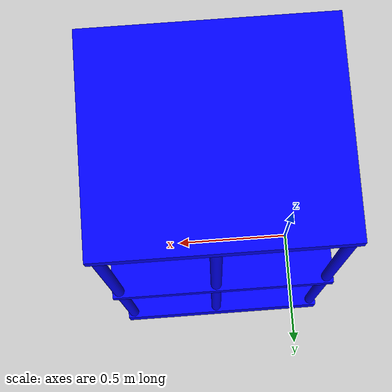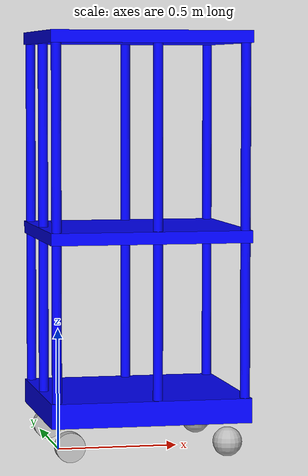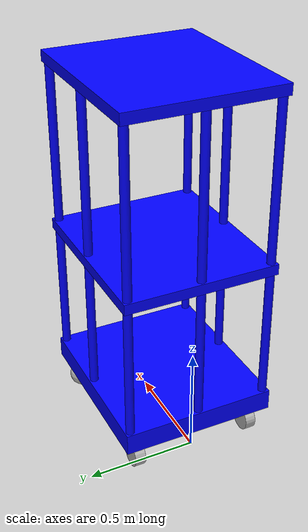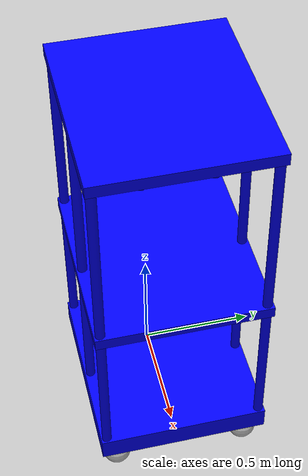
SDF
<?xml version='1.0'?>
<sdf version='1.5'>

  <model name='mobidik'>

   <link name='base_link'>

      <inertial>
        <mass>4*50.0</mass>
        <inertia> <!-- inertias are tricky to compute -->
          <!-- http://gazebosim.org/tutorials?tut=inertia&cat=build_robot -->
          <ixx>0.083*4*50.0*1.01</ixx>       <!-- for a box: ixx = 0.083 * mass * (y*y + z*z) -->
          <ixy>0.0</ixy>         <!-- for a box: ixy = 0 -->
          <ixz>0.0</ixz>         <!-- for a box: ixz = 0 -->
          <iyy>0.083*4*50.0*1.01</iyy>       <!-- for a box: iyy = 0.083 * mass * (x*x + z*z) -->
          <iyz>0.0</iyz>         <!-- for a box: iyz = 0 -->
          <izz>0.083*4*50.0*2</izz>       <!-- for a box: izz = 0.083 * mass * (x*x + y*y) -->
        </inertia>
      </inertial>

      <collision name='base_link_collision'>
        <pose>0.325 0 0.195 0 0 0</pose>
        <geometry>
          <box>
            <size>0.82 0.72 0.1</size>
          </box>
        </geometry>
      </collision>
      <visual name='base_link_visual'>
		<pose>0.325 0 0.195 0 0 0</pose>
        <geometry>
          <box>
            <size>0.82 0.72 0.1</size>
          </box>
        </geometry>
	     <material>
			<ambient>0 0 1 1</ambient>
			<diffuse>0 0 1 1</diffuse>
			<specular>0.1 0.1 0.1 1</specular>
			<emissive>0 0 0 0</emissive>
		</material>
      </visual>

<!-- ********************** Bars ***************************** -->

      <visual name='base_barv1_visual'>
        <pose>-0.06 0.335 0.95 0 0 0</pose>
          <geometry>
            <cylinder>
              <radius>.02</radius>
              <length>1.5</length>
            </cylinder>
          </geometry>
	     <material>
			<ambient>0 0 1 1</ambient>
			<diffuse>0 0 1 1</diffuse>
			<specular>0.1 0.1 0.1 1</specular>
			<emissive>0 0 0 0</emissive>
		</material>
      </visual>

      <visual name='base_barv2_visual'>
        <pose>-0.06 -0.335 0.95 0 0 0</pose>
          <geometry>
            <cylinder>
              <radius>.02</radius>
              <length>1.5</length>
            </cylinder>
          </geometry>
	     <material>
			<ambient>0 0 1 1</ambient>
			<diffuse>0 0 1 1</diffuse>
			<specular>0.1 0.1 0.1 1</specular>
			<emissive>0 0 0 0</emissive>
		</material>
      </visual>

      <visual name='base_barv1_2_visual'>
        <pose>-0.06 0.0 0.95 0 0 0</pose>
          <geometry>
            <cylinder>
              <radius>.02</radius>
              <length>1.5</length>
            </cylinder>
          </geometry>
	     <material>
			<ambient>0 0 1 1</ambient>
			<diffuse>0 0 1 1</diffuse>
			<specular>0.1 0.1 0.1 1</specular>
			<emissive>0 0 0 0</emissive>
		</material>
      </visual>

      <visual name='base_barv3_visual'>
        <pose>0.71 0.335 0.95 0 0 0</pose>
          <geometry>
            <cylinder>
              <radius>.02</radius>
              <length>1.5</length>
            </cylinder>
          </geometry>
	     <material>
			<ambient>0 0 1 1</ambient>
			<diffuse>0 0 1 1</diffuse>
			<specular>0.1 0.1 0.1 1</specular>
			<emissive>0 0 0 0</emissive>
		</material>
      </visual>

      <visual name='base_barv4_visual'>
        <pose>0.71 -0.335 0.95 0 0 0</pose>
          <geometry>
            <cylinder>
              <radius>.02</radius>
              <length>1.5</length>
            </cylinder>
          </geometry>
	     <material>
			<ambient>0 0 1 1</ambient>
			<diffuse>0 0 1 1</diffuse>
			<specular>0.1 0.1 0.1 1</specular>
			<emissive>0 0 0 0</emissive>
		</material>
      </visual>

      <visual name='base_barv2_4_visual'>
        <pose>0.35 -0.335 0.95 0 0 0</pose>
          <geometry>
            <cylinder>
              <radius>.02</radius>
              <length>1.5</length>
            </cylinder>
          </geometry>
	     <material>
			<ambient>0 0 1 1</ambient>
			<diffuse>0 0 1 1</diffuse>
			<specular>0.1 0.1 0.1 1</specular>
			<emissive>0 0 0 0</emissive>
		</material>
      </visual>

      <visual name='base_barv1_4_visual'>
        <pose>0.35 0.335 0.95 0 0 0</pose>
          <geometry>
            <cylinder>
              <radius>.02</radius>
              <length>1.5</length>
            </cylinder>
          </geometry>
	     <material>
			<ambient>0 0 1 1</ambient>
			<diffuse>0 0 1 1</diffuse>
			<specular>0.1 0.1 0.1 1</specular>
			<emissive>0 0 0 0</emissive>
		</material>
      </visual>

<!-- ********************** trays ***************************** -->
      <visual name='tray1_visual'>
		<pose>0.325 0 0.9 0 0 0</pose>
        <geometry>
          <box>
            <size>0.82 0.72 0.05</size>
          </box>
        </geometry>
	     <material>
			<ambient>0 0 1 1</ambient>
			<diffuse>0 0 1 1</diffuse>
			<specular>0.1 0.1 0.1 1</specular>
			<emissive>0 0 0 0</emissive>
		</material>
      </visual>
      <visual name='tray2_visual'>
		<pose>0.325 0 1.7 0 0 0</pose>
        <geometry>
          <box>
            <size>0.82 0.72 0.05</size>
          </box>
        </geometry>
	     <material>
			<ambient>0 0 1 1</ambient>
			<diffuse>0 0 1 1</diffuse>
			<specular>0.1 0.1 0.1 1</specular>
			<emissive>0 0 0 0</emissive>
		</material>
      </visual>

<!-- ********************** Casters ***************************** -->

		<collision name='caster_top_left_collision'>
            <pose>0.65 0.285 0.06 0 0 0</pose>
            <geometry>
                <sphere>
                <radius>.06</radius>
              </sphere>
            </geometry>

            <surface>
              <friction>
                <ode>
                  <mu>0</mu>
                  <mu2>0</mu2>
                  <slip1>1.0</slip1>
                  <slip2>1.0</slip2>
                </ode>
              </friction>
            </surface>
          </collision>

          <visual name='caster_top_left_visual'>
			<pose>0.65 0.285 0.06 0 0 0</pose>
            <geometry>
                <sphere>
                <radius>.06</radius>
              </sphere>
            </geometry>

          </visual>

		<collision name='caster_top_right_collision'>
            <pose>0.65 -0.285 0.06 0 0 0</pose>
            <geometry>
                <sphere>
                <radius>.06</radius>
              </sphere>
            </geometry>

            <surface>
              <friction>
                <ode>
                  <mu>0</mu>
                  <mu2>0</mu2>
                  <slip1>1.0</slip1>
                  <slip2>1.0</slip2>
                </ode>
              </friction>
            </surface>
          </collision>

          <visual name='caster_top_right_visual'>
			<pose>0.65 -0.285 0.06 0 0 0</pose>
            <geometry>
                <sphere>
                <radius>.06</radius>
              </sphere>
            </geometry>

          </visual>

     <gravity>1</gravity>
      <self_collide>0</self_collide>

      </link>

<!-- ********************** Wheels ***************************** -->
      <link name="left_rear_wheel">
        <pose>0 0.285 0.06 0 1.5707 1.5707</pose>
        <collision name="collision">
          <geometry>
            <cylinder>
              <radius>.06</radius>
              <length>.05</length>
            </cylinder>
          </geometry>
	  <surface>
	  <friction>
	    <ode>
              <mu>0.0</mu>
              <mu2>0.0</mu2>
              <slip1>1.0</slip1>
              <slip2>1.0</slip2>
	    </ode>
	  </friction>
	  <contact>
	    <ode><min_depth>0.003</min_depth></ode>
	  </contact>
	</surface>
        </collision>
        <visual name="visual">
          <geometry>
            <cylinder>
              <radius>.06</radius>
              <length>.05</length>
            </cylinder>
          </geometry>
        </visual>
      </link>

      <link name="right_rear_wheel">
        <pose>0 -0.285 0.06 0 1.5707 1.5707</pose>
        <collision name="collision">
          <geometry>
            <cylinder>
              <radius>.06</radius>
              <length>.05</length>
            </cylinder>
          </geometry>
	  <surface>
	    <friction>
	      <ode>
              <mu>0.0</mu>
              <mu2>0.0</mu2>
              <slip1>1.0</slip1>
              <slip2>1.0</slip2>
	      </ode>
	    </friction>
	    <contact>
	      <ode><min_depth>0.003</min_depth></ode>
	    </contact>
	  </surface>
        </collision>
        <visual name="visual">
          <geometry>
            <cylinder>
              <radius>.06</radius>
              <length>.05</length>
            </cylinder>
          </geometry>
        </visual>
      </link>

       <joint type="revolute" name="left_wheel_hinge">
        <pose>0 0 -0.085 0 0 0</pose>
        <child>left_rear_wheel</child>
        <parent>base_link</parent>
        <axis>
          <xyz>0 0 1</xyz>
        </axis>
      </joint>

      <joint type="revolute" name="right_wheel_hinge">
        <pose>0 0 -0.085 0 0 0</pose>
        <child>right_rear_wheel</child>
        <parent>base_link</parent>
        <axis>
          <xyz>0 0 1</xyz>
        </axis>
      </joint>

<!-- ********************** Other parameters ***************************** -->

   <plugin name="Odometry_Plugin" filename="libOdometry_Plugin.so">
       <updateRate>30.0</updateRate>
       <veltopicName>/load/cmd_vel</veltopicName>
       <odomtopicName>/load/odom_incomplete</odomtopicName>
       <robotBaseFrame>/load/base_link</robotBaseFrame>
       <odomFrame>/load/odom</odomFrame>
   </plugin>

  </model>

  </sdf>
